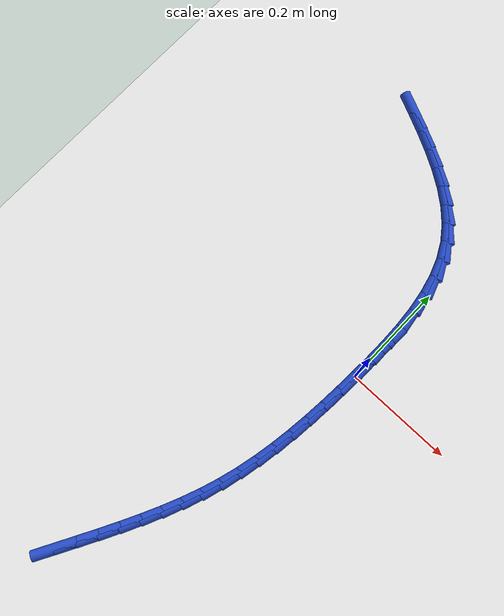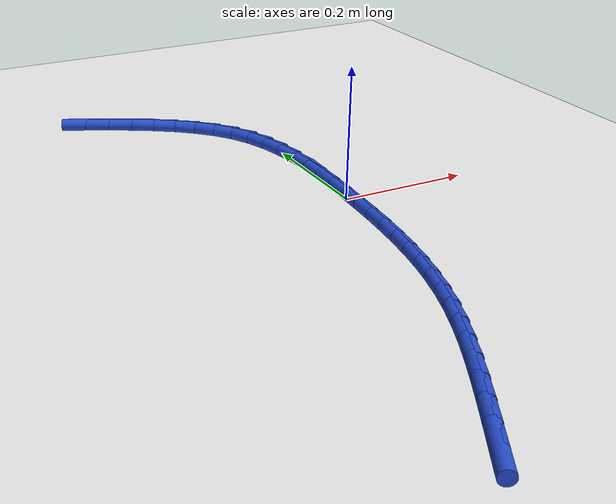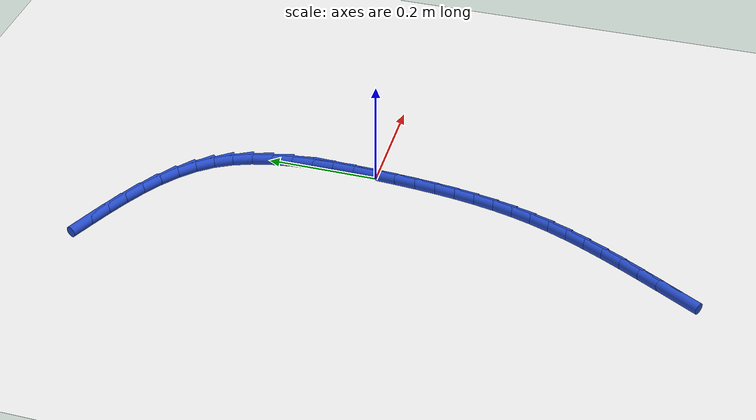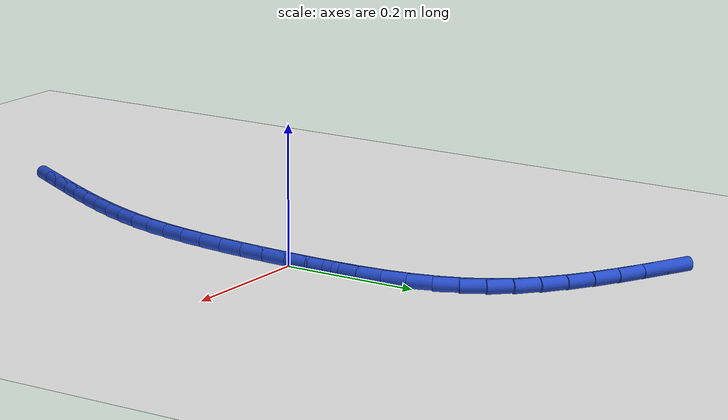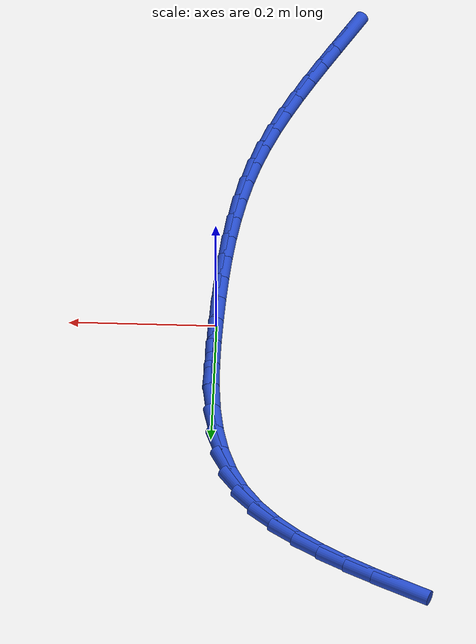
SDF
<sdf version="1.6">
 <world name="default">
  <model name="ground_plane">
   <static>1</static>
   <link name="link">
    <collision name="collision">
     <geometry><plane><normal>0 0 1</normal><size>100 100</size></plane></geometry>
     <surface><friction><ode><mu>100</mu><mu2>50</mu2></ode></friction></surface>
    </collision>
    <visual name="visual">
     <cast_shadows>0</cast_shadows>
     <geometry><plane><normal>0 0 1</normal><size>100 100</size></plane></geometry>
     <material>
      <script><uri>file://media/materials/scripts/gazebo.material</uri><name>Gazebo/WhiteGlow</name></script>
     </material>
    </visual>
   </link>
  </model>
  <model name="line">
   <link name="link_0">
    <pose>3.350184712980209e-17 3.469446951953614e-17 0.01 0 1.57 1.5304056924930138</pose>
    <collision name="collision">
     <geometry><cylinder><radius>0.01</radius><length>0.08</length></cylinder></geometry>
    </collision>
    <visual name="visual">
     <material>
      <script><name>Gazebo/Blue</name><uri>file://media/materials/scripts/gazebo.material</uri></script>
     </material>
     <geometry><cylinder><radius>0.01</radius><length>0.08</length></cylinder></geometry>
    </visual>
   </link>
   <link name="link_1">
    <pose>0.001588194229673774 0.03929946883411981 0.01 0 1.57 1.5548960677146382</pose>
    <collision name="collision">
     <geometry><cylinder><radius>0.01</radius><length>0.08</length></cylinder></geometry>
    </collision>
    <visual name="visual">
     <material>
      <script><name>Gazebo/Blue</name><uri>file://media/materials/scripts/gazebo.material</uri></script>
     </material>
     <geometry><cylinder><radius>0.01</radius><length>0.08</length></cylinder></geometry>
    </visual>
   </link>
   <link name="link_2">
    <pose>0.002215800591229699 0.07876759745926659 0.01 0 1.57 -1.5488991715096991</pose>
    <collision name="collision">
     <geometry><cylinder><radius>0.01</radius><length>0.08</length></cylinder></geometry>
    </collision>
    <visual name="visual">
     <material>
      <script><name>Gazebo/Blue</name><uri>file://media/materials/scripts/gazebo.material</uri></script>
     </material>
     <geometry><cylinder><radius>0.01</radius><length>0.08</length></cylinder></geometry>
    </visual>
   </link>
   <link name="link_3">
    <pose>0.001357774036339202 0.11794571910391621 0.01 0 1.57 -1.496285921735271</pose>
    <collision name="collision">
     <geometry><cylinder><radius>0.01</radius><length>0.08</length></cylinder></geometry>
    </collision>
    <visual name="visual">
     <material>
      <script><name>Gazebo/Blue</name><uri>file://media/materials/scripts/gazebo.material</uri></script>
     </material>
     <geometry><cylinder><radius>0.01</radius><length>0.08</length></cylinder></geometry>
    </visual>
   </link>
   <link name="link_4">
    <pose>-0.001510930483326317 0.1563751669965446 0.01 0 1.57 -1.426609882147725</pose>
    <collision name="collision">
     <geometry><cylinder><radius>0.01</radius><length>0.08</length></cylinder></geometry>
    </collision>
    <visual name="visual">
     <material>
      <script><name>Gazebo/Blue</name><uri>file://media/materials/scripts/gazebo.material</uri></script>
     </material>
     <geometry><cylinder><radius>0.01</radius><length>0.08</length></cylinder></geometry>
    </visual>
   </link>
   <link name="link_5">
    <pose>-0.006915358016095463 0.19359727436562785 0.01 0 1.57 -1.3370675855114622</pose>
    <collision name="collision">
     <geometry><cylinder><radius>0.01</radius><length>0.08</length></cylinder></geometry>
    </collision>
    <visual name="visual">
     <material>
      <script><name>Gazebo/Blue</name><uri>file://media/materials/scripts/gazebo.material</uri></script>
     </material>
     <geometry><cylinder><radius>0.01</radius><length>0.08</length></cylinder></geometry>
    </visual>
   </link>
   <link name="link_6">
    <pose>-0.015380553610296843 0.22915337443964182 0.01 0 1.57 -1.2248251934461607</pose>
    <collision name="collision">
     <geometry><cylinder><radius>0.01</radius><length>0.08</length></cylinder></geometry>
    </collision>
    <visual name="visual">
     <material>
      <script><name>Gazebo/Blue</name><uri>file://media/materials/scripts/gazebo.material</uri></script>
     </material>
     <geometry><cylinder><radius>0.01</radius><length>0.08</length></cylinder></geometry>
    </visual>
   </link>
   <link name="link_7">
    <pose>-0.02743156231425906 0.26258480044706234 0.01 0 1.57 -1.0881979202606518</pose>
    <collision name="collision">
     <geometry><cylinder><radius>0.01</radius><length>0.08</length></cylinder></geometry>
    </collision>
    <visual name="visual">
     <material>
      <script><name>Gazebo/Blue</name><uri>file://media/materials/scripts/gazebo.material</uri></script>
     </material>
     <geometry><cylinder><radius>0.01</radius><length>0.08</length></cylinder></geometry>
    </visual>
   </link>
   <link name="link_8">
    <pose>-0.04359342917631069 0.2934328856163655 0.01 0 1.57 -0.9344725617930717</pose>
    <collision name="collision">
     <geometry><cylinder><radius>0.01</radius><length>0.08</length></cylinder></geometry>
    </collision>
    <visual name="visual">
     <material>
      <script><name>Gazebo/Blue</name><uri>file://media/materials/scripts/gazebo.material</uri></script>
     </material>
     <geometry><cylinder><radius>0.01</radius><length>0.08</length></cylinder></geometry>
    </visual>
   </link>
   <link name="link_9">
    <pose>-0.06422778586034152 0.3213607318713422 0.01 0 1.57 -0.7955751249455797</pose>
    <collision name="collision">
     <geometry><cylinder><radius>0.01</radius><length>0.08</length></cylinder></geometry>
    </collision>
    <visual name="visual">
     <material>
      <script><name>Gazebo/Blue</name><uri>file://media/materials/scripts/gazebo.material</uri></script>
     </material>
     <geometry><cylinder><radius>0.01</radius><length>0.08</length></cylinder></geometry>
    </visual>
   </link>
   <link name="link_10">
    <pose>-0.0889478444422824 0.3465891315421524 0.01 0 1.57 -0.6821644141039905</pose>
    <collision name="collision">
     <geometry><cylinder><radius>0.01</radius><length>0.08</length></cylinder></geometry>
    </collision>
    <visual name="visual">
     <material>
      <script><name>Gazebo/Blue</name><uri>file://media/materials/scripts/gazebo.material</uri></script>
     </material>
     <geometry><cylinder><radius>0.01</radius><length>0.08</length></cylinder></geometry>
    </visual>
   </link>
   <link name="link_11">
    <pose>-0.11715268341810359 0.3694984401841134 0.01 0 1.57 -0.593434187609674</pose>
    <collision name="collision">
     <geometry><cylinder><radius>0.01</radius><length>0.08</length></cylinder></geometry>
    </collision>
    <visual name="visual">
     <material>
      <script><name>Gazebo/Blue</name><uri>file://media/materials/scripts/gazebo.material</uri></script>
     </material>
     <geometry><cylinder><radius>0.01</radius><length>0.08</length></cylinder></geometry>
    </visual>
   </link>
   <link name="link_12">
    <pose>-0.1482413640963834 0.3904690261598552 0.01 0 1.57 -0.5268545136994857</pose>
    <collision name="collision">
     <geometry><cylinder><radius>0.01</radius><length>0.08</length></cylinder></geometry>
    </collision>
    <visual name="visual">
     <material>
      <script><name>Gazebo/Blue</name><uri>file://media/materials/scripts/gazebo.material</uri></script>
     </material>
     <geometry><cylinder><radius>0.01</radius><length>0.08</length></cylinder></geometry>
    </visual>
   </link>
   <link name="link_13">
    <pose>-0.1816129477857002 0.4098812578320075 0.01 0 1.57 -0.4796630152522517</pose>
    <collision name="collision">
     <geometry><cylinder><radius>0.01</radius><length>0.08</length></cylinder></geometry>
    </collision>
    <visual name="visual">
     <material>
      <script><name>Gazebo/Blue</name><uri>file://media/materials/scripts/gazebo.material</uri></script>
     </material>
     <geometry><cylinder><radius>0.01</radius><length>0.08</length></cylinder></geometry>
    </visual>
   </link>
   <link name="link_14">
    <pose>-0.2166664957946325 0.42811550356320033 0.01 0 1.57 -0.4495879320825388</pose>
    <collision name="collision">
     <geometry><cylinder><radius>0.01</radius><length>0.08</length></cylinder></geometry>
    </collision>
    <visual name="visual">
     <material>
      <script><name>Gazebo/Blue</name><uri>file://media/materials/scripts/gazebo.material</uri></script>
     </material>
     <geometry><cylinder><radius>0.01</radius><length>0.08</length></cylinder></geometry>
    </visual>
   </link>
   <link name="link_15">
    <pose>-0.2528010694317585 0.4455521317160631 0.01 0 1.57 -0.4351130866983089</pose>
    <collision name="collision">
     <geometry><cylinder><radius>0.01</radius><length>0.08</length></cylinder></geometry>
    </collision>
    <visual name="visual">
     <material>
      <script><name>Gazebo/Blue</name><uri>file://media/materials/scripts/gazebo.material</uri></script>
     </material>
     <geometry><cylinder><radius>0.01</radius><length>0.08</length></cylinder></geometry>
    </visual>
   </link>
   <link name="link_194">
    <pose>-0.17206766862570383 -0.5602792996005597 0.01 0 1.57 1.0623322714319217</pose>
    <collision name="collision">
     <geometry><cylinder><radius>0.01</radius><length>0.08</length></cylinder></geometry>
    </collision>
    <visual name="visual">
     <material>
      <script><name>Gazebo/Blue</name><uri>file://media/materials/scripts/gazebo.material</uri></script>
     </material>
     <geometry><cylinder><radius>0.01</radius><length>0.08</length></cylinder></geometry>
    </visual>
   </link>
   <link name="link_195">
    <pose>-0.15337986958660046 -0.5267491972542293 0.01 0 1.57 1.0663147900825214</pose>
    <collision name="collision">
     <geometry><cylinder><radius>0.01</radius><length>0.08</length></cylinder></geometry>
    </collision>
    <visual name="visual">
     <material>
      <script><name>Gazebo/Blue</name><uri>file://media/materials/scripts/gazebo.material</uri></script>
     </material>
     <geometry><cylinder><radius>0.01</radius><length>0.08</length></cylinder></geometry>
    </visual>
   </link>
   <link name="link_196">
    <pose>-0.1350223942522059 -0.49350108363571477 0.01 0 1.57 1.0769697806808598</pose>
    <collision name="collision">
     <geometry><cylinder><radius>0.01</radius><length>0.08</length></cylinder></geometry>
    </collision>
    <visual name="visual">
     <material>
      <script><name>Gazebo/Blue</name><uri>file://media/materials/scripts/gazebo.material</uri></script>
     </material>
     <geometry><cylinder><radius>0.01</radius><length>0.08</length></cylinder></geometry>
    </visual>
   </link>
   <link name="link_197">
    <pose>-0.11721162887538504 -0.4604148474669575 0.01 0 1.57 1.0945091311694095</pose>
    <collision name="collision">
     <geometry><cylinder><radius>0.01</radius><length>0.08</length></cylinder></geometry>
    </collision>
    <visual name="visual">
     <material>
      <script><name>Gazebo/Blue</name><uri>file://media/materials/scripts/gazebo.material</uri></script>
     </material>
     <geometry><cylinder><radius>0.01</radius><length>0.08</length></cylinder></geometry>
    </visual>
   </link>
   <link name="link_198">
    <pose>-0.1001639597090015 -0.4273703774698969 0.01 0 1.57 1.1191320580887683</pose>
    <collision name="collision">
     <geometry><cylinder><radius>0.01</radius><length>0.08</length></cylinder></geometry>
    </collision>
    <visual name="visual">
     <material>
      <script><name>Gazebo/Blue</name><uri>file://media/materials/scripts/gazebo.material</uri></script>
     </material>
     <geometry><cylinder><radius>0.01</radius><length>0.08</length></cylinder></geometry>
    </visual>
   </link>
   <link name="link_199">
    <pose>-0.08409577300591936 -0.394247562366473 0.01 0 1.57 1.1509976905283552</pose>
    <collision name="collision">
     <geometry><cylinder><radius>0.01</radius><length>0.08</length></cylinder></geometry>
    </collision>
    <visual name="visual">
     <material>
      <script><name>Gazebo/Blue</name><uri>file://media/materials/scripts/gazebo.material</uri></script>
     </material>
     <geometry><cylinder><radius>0.01</radius><length>0.08</length></cylinder></geometry>
    </visual>
   </link>
   <link name="link_200">
    <pose>-0.0692234550190027 -0.36092629087862615 0.01 0 1.57 1.1901841847151806</pose>
    <collision name="collision">
     <geometry><cylinder><radius>0.01</radius><length>0.08</length></cylinder></geometry>
    </collision>
    <visual name="visual">
     <material>
      <script><name>Gazebo/Blue</name><uri>file://media/materials/scripts/gazebo.material</uri></script>
     </material>
     <geometry><cylinder><radius>0.01</radius><length>0.08</length></cylinder></geometry>
    </visual>
   </link>
   <link name="link_201">
    <pose>-0.055763392001115575 -0.327286451728296 0.01 0 1.57 1.2366346941775306</pose>
    <collision name="collision">
     <geometry><cylinder><radius>0.01</radius><length>0.08</length></cylinder></geometry>
    </collision>
    <visual name="visual">
     <material>
      <script><name>Gazebo/Blue</name><uri>file://media/materials/scripts/gazebo.material</uri></script>
     </material>
     <geometry><cylinder><radius>0.01</radius><length>0.08</length></cylinder></geometry>
    </visual>
   </link>
   <link name="link_202">
    <pose>-0.043931964246348786 -0.29320793533053097 0.01 0 1.57 1.2879540866151802</pose>
    <collision name="collision">
     <geometry><cylinder><radius>0.01</radius><length>0.08</length></cylinder></geometry>
    </collision>
    <visual name="visual">
     <material>
      <script><name>Gazebo/Blue</name><uri>file://media/materials/scripts/gazebo.material</uri></script>
     </material>
     <geometry><cylinder><radius>0.01</radius><length>0.08</length></cylinder></geometry>
    </visual>
   </link>
   <link name="link_203">
    <pose>-0.03387131312877055 -0.2585917261341692 0.01 0 1.57 1.3362137906888867</pose>
    <collision name="collision">
     <geometry><cylinder><radius>0.01</radius><length>0.08</length></cylinder></geometry>
    </collision>
    <visual name="visual">
     <material>
      <script><name>Gazebo/Blue</name><uri>file://media/materials/scripts/gazebo.material</uri></script>
     </material>
     <geometry><cylinder><radius>0.01</radius><length>0.08</length></cylinder></geometry>
    </visual>
   </link>
   <link name="link_204">
    <pose>-0.025464107117990478 -0.223412534474846 0.01 0 1.57 1.3793927459767503</pose>
    <collision name="collision">
     <geometry><cylinder><radius>0.01</radius><length>0.08</length></cylinder></geometry>
    </collision>
    <visual name="visual">
     <material>
      <script><name>Gazebo/Blue</name><uri>file://media/materials/scripts/gazebo.material</uri></script>
     </material>
     <geometry><cylinder><radius>0.01</radius><length>0.08</length></cylinder></geometry>
    </visual>
   </link>
   <link name="link_205">
    <pose>-0.018536360173007305 -0.18766116833833427 0.01 0 1.57 1.417269988794599</pose>
    <collision name="collision">
     <geometry><cylinder><radius>0.01</radius><length>0.08</length></cylinder></geometry>
    </collision>
    <visual name="visual">
     <material>
      <script><name>Gazebo/Blue</name><uri>file://media/materials/scripts/gazebo.material</uri></script>
     </material>
     <geometry><cylinder><radius>0.01</radius><length>0.08</length></cylinder></geometry>
    </visual>
   </link>
   <link name="link_206">
    <pose>-0.012914086252819743 -0.151328435710407 0.01 0 1.57 1.4497660006399744</pose>
    <collision name="collision">
     <geometry><cylinder><radius>0.01</radius><length>0.08</length></cylinder></geometry>
    </collision>
    <visual name="visual">
     <material>
      <script><name>Gazebo/Blue</name><uri>file://media/materials/scripts/gazebo.material</uri></script>
     </material>
     <geometry><cylinder><radius>0.01</radius><length>0.08</length></cylinder></geometry>
    </visual>
   </link>
   <link name="link_207">
    <pose>-0.008423299316426509 -0.114405144576837 0.01 0 1.57 1.476910058657048</pose>
    <collision name="collision">
     <geometry><cylinder><radius>0.01</radius><length>0.08</length></cylinder></geometry>
    </collision>
    <visual name="visual">
     <material>
      <script><name>Gazebo/Blue</name><uri>file://media/materials/scripts/gazebo.material</uri></script>
     </material>
     <geometry><cylinder><radius>0.01</radius><length>0.08</length></cylinder></geometry>
    </visual>
   </link>
   <link name="link_208">
    <pose>-0.004890013322826324 -0.07688210292339728 0.01 0 1.57 1.4988090023237637</pose>
    <collision name="collision">
     <geometry><cylinder><radius>0.01</radius><length>0.08</length></cylinder></geometry>
    </collision>
    <visual name="visual">
     <material>
      <script><name>Gazebo/Blue</name><uri>file://media/materials/scripts/gazebo.material</uri></script>
     </material>
     <geometry><cylinder><radius>0.01</radius><length>0.08</length></cylinder></geometry>
    </visual>
   </link>
   <link name="link_209">
    <pose>-0.0021402422310178508 -0.03875011873585979 0.01 0 1.57 1.5156204986429709</pose>
    <collision name="collision">
     <geometry><cylinder><radius>0.01</radius><length>0.08</length></cylinder></geometry>
    </collision>
    <visual name="visual">
     <material>
      <script><name>Gazebo/Blue</name><uri>file://media/materials/scripts/gazebo.material</uri></script>
     </material>
     <geometry><cylinder><radius>0.01</radius><length>0.08</length></cylinder></geometry>
    </visual>
   </link>
   <link name="link_210">
    <pose>1.951563910473908e-17 -1.734723475976807e-16 0.01 0 1.57 1.5275320761710227</pose>
    <collision name="collision">
     <geometry><cylinder><radius>0.01</radius><length>0.08</length></cylinder></geometry>
    </collision>
    <visual name="visual">
     <material>
      <script><name>Gazebo/Blue</name><uri>file://media/materials/scripts/gazebo.material</uri></script>
     </material>
     <geometry><cylinder><radius>0.01</radius><length>0.08</length></cylinder></geometry>
    </visual>
   </link>
   <link name="link_211">
    <pose>0.0017046994112287373 0.03937744529841132 0.01 0 1.57 1.5347459769709608</pose>
    <collision name="collision">
     <geometry><cylinder><radius>0.01</radius><length>0.08</length></cylinder></geometry>
    </collision>
    <visual name="visual">
     <material>
      <script><name>Gazebo/Blue</name><uri>file://media/materials/scripts/gazebo.material</uri></script>
     </material>
     <geometry><cylinder><radius>0.01</radius><length>0.08</length></cylinder></geometry>
    </visual>
   </link>
   <link name="link_212">
    <pose>0.0031478420436695893 0.07939140917360277 0.01 0 1.57 1.5311674291406354</pose>
    <collision name="collision">
     <geometry><cylinder><radius>0.01</radius><length>0.08</length></cylinder></geometry>
    </collision>
    <visual name="visual">
     <material>
      <script><name>Gazebo/Blue</name><uri>file://media/materials/scripts/gazebo.material</uri></script>
     </material>
     <geometry><cylinder><radius>0.01</radius><length>0.08</length></cylinder></geometry>
    </visual>
   </link>
  </model>
 </world>
</sdf>
